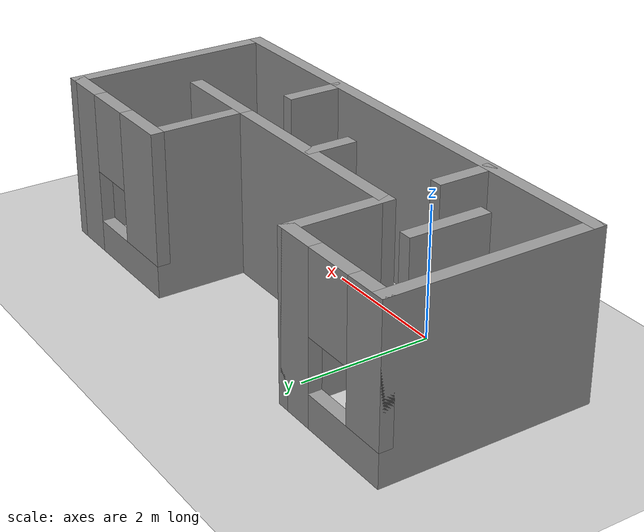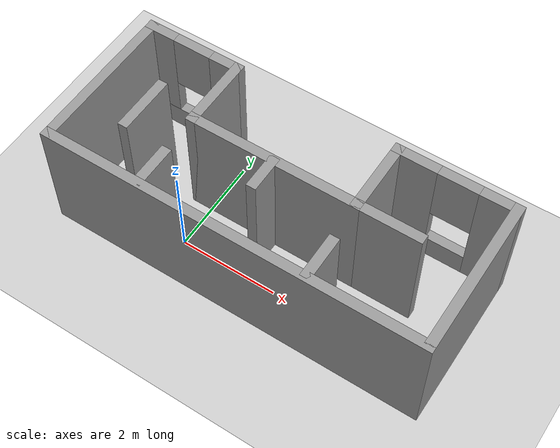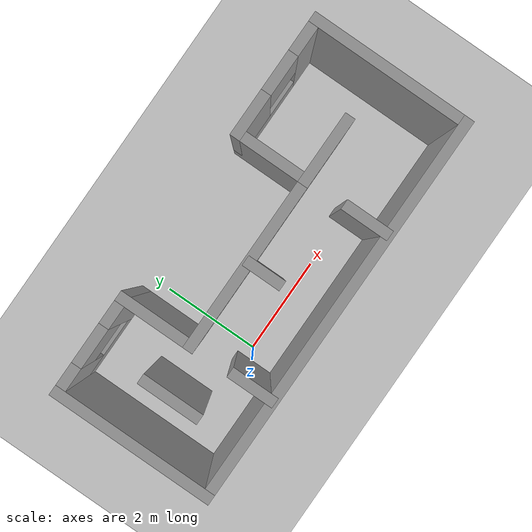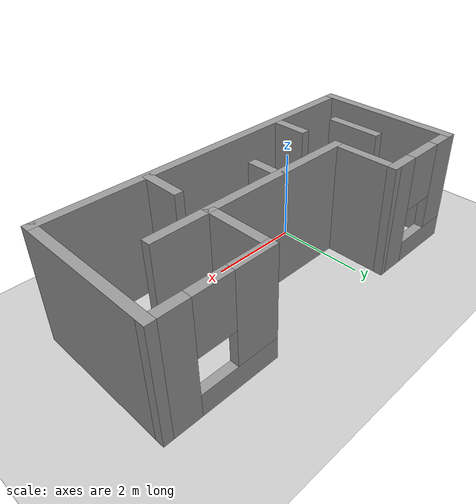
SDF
<sdf version="1.4">
 <world name="default">
  <light name="sun" type="directional">
   <pose>0 0 10 0 -0 0</pose>
   <diffuse>0.8 0.8 0.8 1</diffuse>
   <specular>0.2 0.2 0.2 1</specular>
   <attenuation>
    <range>1000</range>
    <constant>0.9</constant>
    <linear>0.01</linear>
    <quadratic>0.001</quadratic>
   </attenuation>
   <direction>-0.5 0.1 -0.9</direction>
  </light>
  <model name="ground_plane">
   <static>1</static>
   <link name="link">
    <collision name="collision">
     <geometry><plane><normal>0 0 1</normal><size>100 100</size></plane></geometry>
     <surface><friction><ode><mu>100</mu><mu2>50</mu2></ode></friction></surface>
    </collision>
    <visual name="visual">
     <cast_shadows>0</cast_shadows>
     <geometry><plane><normal>0 0 1</normal><size>100 100</size></plane></geometry>
     <material>
      <script><uri>file://media/materials/scripts/gazebo.material</uri><name>Gazebo/Grey</name></script>
     </material>
    </visual>
    <velocity_decay><linear>0</linear><angular>0</angular></velocity_decay>
   </link>
  </model>
  <model name="maze1">
   <pose>3.47006 2.43862 0 0 -0 0</pose>
   <link name="Wall_10">
    <collision name="Wall_10_Collision">
     <geometry><box><size>3.24327 0.2 2.5</size></box></geometry>
     <pose>0 0 1.25 0 -0 0</pose>
    </collision>
    <visual name="Wall_10_Visual">
     <pose>0 0 1.25 0 -0 0</pose>
     <geometry><box><size>3.24327 0.2 2.5</size></box></geometry>
     <material>
      <script><uri>file://media/materials/scripts/gazebo.material</uri><name>Gazebo/Grey</name></script>
     </material>
    </visual>
    <velocity_decay><linear>0</linear><angular>0</angular></velocity_decay>
    <pose>-5.73365 -1.57745 0 0 0 -1.5708</pose>
   </link>
   <link name="Wall_12">
    <collision name="Wall_12_Collision">
     <geometry><box><size>0.759682 0.2 2.5</size></box></geometry>
     <pose>0 0 1.25 0 -0 0</pose>
    </collision>
    <visual name="Wall_12_Visual">
     <pose>0 0 1.25 0 -0 0</pose>
     <geometry><box><size>0.759682 0.2 2.5</size></box></geometry>
     <material>
      <script><uri>file://media/materials/scripts/gazebo.material</uri><name>Gazebo/Grey</name></script>
     </material>
    </visual>
    <velocity_decay><linear>0</linear><angular>0</angular></velocity_decay>
    <pose>-2.1132 -1.75235 0 0 0 -1.5708</pose>
   </link>
   <link name="Wall_14">
    <collision name="Wall_14_Collision">
     <geometry><box><size>0.917093 0.2 2.5</size></box></geometry>
     <pose>0 0 1.25 0 -0 0</pose>
    </collision>
    <visual name="Wall_14_Visual">
     <pose>0 0 1.25 0 -0 0</pose>
     <geometry><box><size>0.917093 0.2 2.5</size></box></geometry>
     <material>
      <script><uri>file://media/materials/scripts/gazebo.material</uri><name>Gazebo/Grey</name></script>
     </material>
    </visual>
    <velocity_decay><linear>0</linear><angular>0</angular></velocity_decay>
    <pose>-3.79225 -2.68807 0 0 -0 1.5708</pose>
   </link>
   <link name="Wall_16">
    <collision name="Wall_16_Collision">
     <geometry><box><size>0.934583 0.2 2.5</size></box></geometry>
     <pose>0 0 1.25 0 -0 0</pose>
    </collision>
    <visual name="Wall_16_Visual">
     <pose>0 0 1.25 0 -0 0</pose>
     <geometry><box><size>0.934583 0.2 2.5</size></box></geometry>
     <material>
      <script><uri>file://media/materials/scripts/gazebo.material</uri><name>Gazebo/Grey</name></script>
     </material>
    </visual>
    <velocity_decay><linear>0</linear><angular>0</angular></velocity_decay>
    <pose>-0.399176 -2.66183 0 0 -0 1.5708</pose>
   </link>
   <link name="Wall_18">
    <collision name="Wall_18_Collision">
     <geometry><box><size>1.40681 0.2 2.5</size></box></geometry>
     <pose>0 0 1.25 0 -0 0</pose>
    </collision>
    <visual name="Wall_18_Visual">
     <pose>0 0 1.25 0 -0 0</pose>
     <geometry><box><size>1.40681 0.2 2.5</size></box></geometry>
     <material>
      <script><uri>file://media/materials/scripts/gazebo.material</uri><name>Gazebo/Grey</name></script>
     </material>
    </visual>
    <velocity_decay><linear>0</linear><angular>0</angular></velocity_decay>
    <pose>0.169251 -1.43753 0 0 -0 0</pose>
   </link>
   <link name="Wall_20">
    <collision name="Wall_20_Collision">
     <geometry><box><size>1.21442 0.2 2.5</size></box></geometry>
     <pose>0 0 1.25 0 -0 0</pose>
    </collision>
    <visual name="Wall_20_Visual">
     <pose>0 0 1.25 0 -0 0</pose>
     <geometry><box><size>1.21442 0.2 2.5</size></box></geometry>
     <material>
      <script><uri>file://media/materials/scripts/gazebo.material</uri><name>Gazebo/Grey</name></script>
     </material>
    </visual>
    <velocity_decay><linear>0</linear><angular>0</angular></velocity_decay>
    <pose>-4.73671 -1.6649 0 0 0 -1.5708</pose>
   </link>
   <link name="Wall_3">
    <collision name="Wall_3_Collision">
     <geometry><box><size>7.80818 0.2 2.5</size></box></geometry>
     <pose>0 0 1.25 0 -0 0</pose>
    </collision>
    <visual name="Wall_3_Visual">
     <pose>0 0 1.25 0 -0 0</pose>
     <geometry><box><size>7.80818 0.2 2.5</size></box></geometry>
     <material>
      <script><uri>file://media/materials/scripts/gazebo.material</uri><name>Gazebo/Grey</name></script>
     </material>
    </visual>
    <velocity_decay><linear>0</linear><angular>0</angular></velocity_decay>
    <pose>-1.92956 -3.09909 0 0 -0 0</pose>
   </link>
   <link name="Wall_4">
    <collision name="Wall_4_Collision">
     <geometry><box><size>3.24327 0.2 2.5</size></box></geometry>
     <pose>0 0 1.25 0 -0 0</pose>
    </collision>
    <visual name="Wall_4_Visual">
     <pose>0 0 1.25 0 -0 0</pose>
     <geometry><box><size>3.24327 0.2 2.5</size></box></geometry>
     <material>
      <script><uri>file://media/materials/scripts/gazebo.material</uri><name>Gazebo/Grey</name></script>
     </material>
    </visual>
    <velocity_decay><linear>0</linear><angular>0</angular></velocity_decay>
    <pose>1.87453 -1.57745 0 0 -0 1.5708</pose>
   </link>
   <link name="Wall_5">
    <pose>0.720188 -0.055814 0 0 -0 3.14159</pose>
    <visual name="Wall_5_Visual_0">
     <pose>-0.862152 0 1.25 0 -0 0</pose>
     <geometry><box><size>0.784384 0.2 2.5</size></box></geometry>
     <material>
      <script><uri>file://media/materials/scripts/gazebo.material</uri><name>Gazebo/Grey</name></script>
     </material>
    </visual>
    <collision name="Wall_5_Collision_0">
     <geometry><box><size>0.784384 0.2 2.5</size></box></geometry>
     <pose>-0.862152 0 1.25 0 -0 0</pose>
    </collision>
    <visual name="Wall_5_Visual_1">
     <pose>0.392192 0 0.25 0 -0 0</pose>
     <geometry><box><size>1.7243 0.2 0.5</size></box></geometry>
     <material>
      <script><uri>file://media/materials/scripts/gazebo.material</uri><name>Gazebo/Grey</name></script>
     </material>
    </visual>
    <collision name="Wall_5_Collision_1">
     <geometry><box><size>1.7243 0.2 0.5</size></box></geometry>
     <pose>0.392192 0 0.25 0 -0 0</pose>
    </collision>
    <visual name="Wall_5_Visual_2">
     <pose>0.792192 0 1.5 0 -0 0</pose>
     <geometry><box><size>0.924304 0.2 2</size></box></geometry>
     <material>
      <script><uri>file://media/materials/scripts/gazebo.material</uri><name>Gazebo/Grey</name></script>
     </material>
    </visual>
    <collision name="Wall_5_Collision_2">
     <geometry><box><size>0.924304 0.2 2</size></box></geometry>
     <pose>0.792192 0 1.5 0 -0 0</pose>
    </collision>
    <visual name="Wall_5_Visual_3">
     <pose>-0.06996 0 1.9 0 -0 0</pose>
     <geometry><box><size>0.8 0.2 1.2</size></box></geometry>
     <material>
      <script><uri>file://media/materials/scripts/gazebo.material</uri><name>Gazebo/Grey</name></script>
     </material>
    </visual>
    <collision name="Wall_5_Collision_3">
     <geometry><box><size>0.8 0.2 1.2</size></box></geometry>
     <pose>-0.06996 0 1.9 0 -0 0</pose>
    </collision>
    <velocity_decay><linear>0</linear><angular>0</angular></velocity_decay>
   </link>
   <link name="Wall_6">
    <collision name="Wall_6_Collision">
     <geometry><box><size>1.58171 0.2 2.5</size></box></geometry>
     <pose>0 0 1.25 0 -0 0</pose>
    </collision>
    <visual name="Wall_6_Visual">
     <pose>0 0 1.25 0 -0 0</pose>
     <geometry><box><size>1.58171 0.2 2.5</size></box></geometry>
     <material>
      <script><uri>file://media/materials/scripts/gazebo.material</uri><name>Gazebo/Grey</name></script>
     </material>
    </visual>
    <velocity_decay><linear>0</linear><angular>0</angular></velocity_decay>
    <pose>-0.434157 -0.746671 0 0 0 -1.5708</pose>
   </link>
   <link name="Wall_7">
    <collision name="Wall_7_Collision">
     <geometry><box><size>3.57558 0.2 2.5</size></box></geometry>
     <pose>0 0 1.25 0 -0 0</pose>
    </collision>
    <visual name="Wall_7_Visual">
     <pose>0 0 1.25 0 -0 0</pose>
     <geometry><box><size>3.57558 0.2 2.5</size></box></geometry>
     <material>
      <script><uri>file://media/materials/scripts/gazebo.material</uri><name>Gazebo/Grey</name></script>
     </material>
    </visual>
    <velocity_decay><linear>0</linear><angular>0</angular></velocity_decay>
    <pose>-2.12195 -1.43753 0 0 -0 3.14159</pose>
   </link>
   <link name="Wall_8">
    <collision name="Wall_8_Collision">
     <geometry><box><size>1.58171 0.2 2.5</size></box></geometry>
     <pose>0 0 1.25 0 -0 0</pose>
    </collision>
    <visual name="Wall_8_Visual">
     <pose>0 0 1.25 0 -0 0</pose>
     <geometry><box><size>1.58171 0.2 2.5</size></box></geometry>
     <material>
      <script><uri>file://media/materials/scripts/gazebo.material</uri><name>Gazebo/Grey</name></script>
     </material>
    </visual>
    <velocity_decay><linear>0</linear><angular>0</angular></velocity_decay>
    <pose>-3.80974 -0.746671 0 0 -0 1.5708</pose>
   </link>
   <link name="Wall_9">
    <pose>-4.77169 -0.055814 0 0 -0 3.14159</pose>
    <visual name="Wall_9_Visual_0">
     <pose>-0.730977 0 1.25 0 -0 0</pose>
     <geometry><box><size>0.661953 0.2 2.5</size></box></geometry>
     <material>
      <script><uri>file://media/materials/scripts/gazebo.material</uri><name>Gazebo/Grey</name></script>
     </material>
    </visual>
    <collision name="Wall_9_Collision_0">
     <geometry><box><size>0.661953 0.2 2.5</size></box></geometry>
     <pose>-0.730977 0 1.25 0 -0 0</pose>
    </collision>
    <visual name="Wall_9_Visual_1">
     <pose>0.330977 0 0.25 0 -0 0</pose>
     <geometry><box><size>1.46195 0.2 0.5</size></box></geometry>
     <material>
      <script><uri>file://media/materials/scripts/gazebo.material</uri><name>Gazebo/Grey</name></script>
     </material>
    </visual>
    <collision name="Wall_9_Collision_1">
     <geometry><box><size>1.46195 0.2 0.5</size></box></geometry>
     <pose>0.330977 0 0.25 0 -0 0</pose>
    </collision>
    <visual name="Wall_9_Visual_2">
     <pose>0.730977 0 1.5 0 -0 0</pose>
     <geometry><box><size>0.661953 0.2 2</size></box></geometry>
     <material>
      <script><uri>file://media/materials/scripts/gazebo.material</uri><name>Gazebo/Grey</name></script>
     </material>
    </visual>
    <collision name="Wall_9_Collision_2">
     <geometry><box><size>0.661953 0.2 2</size></box></geometry>
     <pose>0.730977 0 1.5 0 -0 0</pose>
    </collision>
    <visual name="Wall_9_Visual_3">
     <pose>0 0 1.9 0 -0 0</pose>
     <geometry><box><size>0.8 0.2 1.2</size></box></geometry>
     <material>
      <script><uri>file://media/materials/scripts/gazebo.material</uri><name>Gazebo/Grey</name></script>
     </material>
    </visual>
    <collision name="Wall_9_Collision_3">
     <geometry><box><size>0.8 0.2 1.2</size></box></geometry>
     <pose>0 0 1.9 0 -0 0</pose>
    </collision>
    <velocity_decay><linear>0</linear><angular>0</angular></velocity_decay>
   </link>
   <static>1</static>
  </model>
  <physics type="ode">
   <max_step_size>0.001</max_step_size>
   <real_time_factor>1</real_time_factor>
   <real_time_update_rate>1000</real_time_update_rate>
   <gravity>0 0 -9.8</gravity>
  </physics>
  <scene><ambient>0.4 0.4 0.4 1</ambient><background>0.7 0.7 0.7 1</background><shadows>1</shadows></scene>
  <spherical_coordinates>
   <surface_model>EARTH_WGS84</surface_model>
   <latitude_deg>0</latitude_deg>
   <longitude_deg>0</longitude_deg>
   <elevation>0</elevation>
   <heading_deg>0</heading_deg>
  </spherical_coordinates>
 </world>
</sdf>
